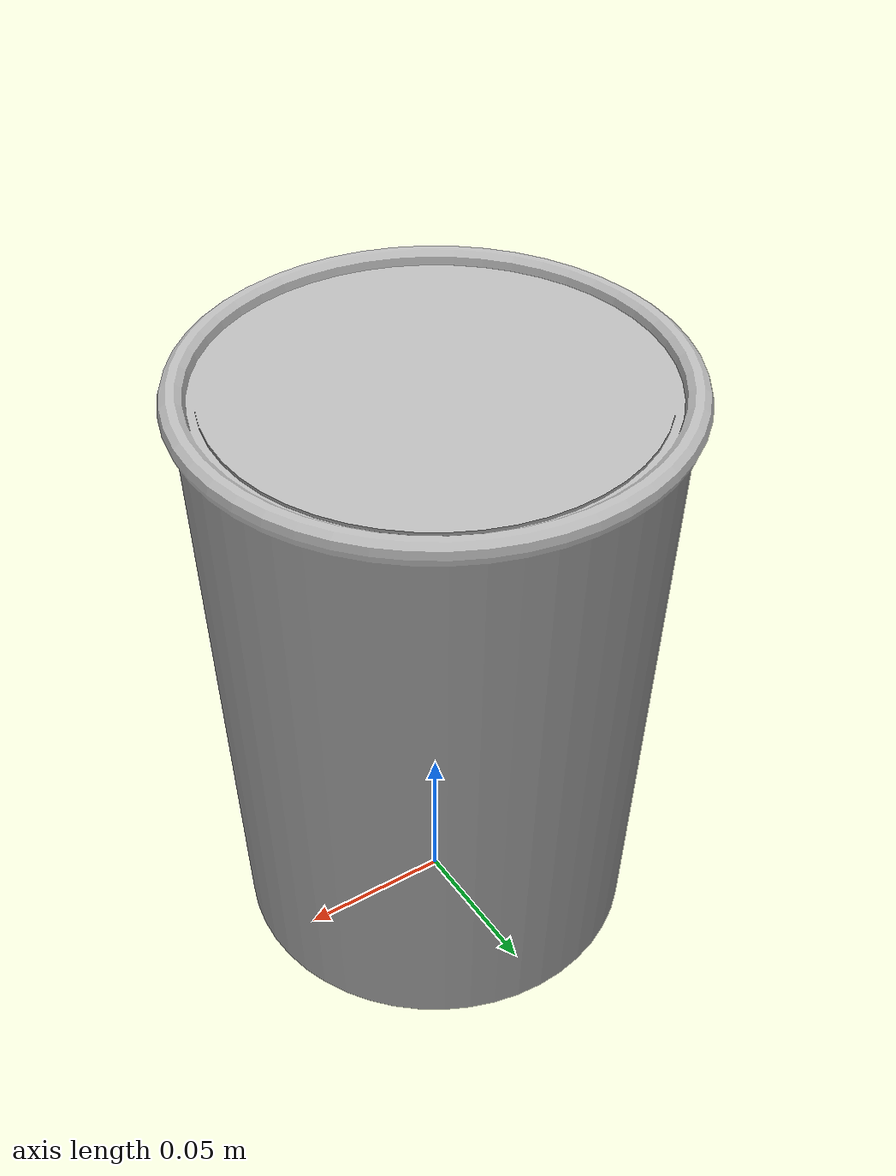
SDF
<?xml version="1.0"?>
<sdf version="1.10">
  <model name="waste_bucket">
    <static>false</static>
    <link name="base_link">
      <inertial>
        <pose>0.000000 0.000000 0.101900 0 0 0</pose>
        <mass>0.4500</mass>
        <inertia>
          <ixx>0.00225079</ixx><ixy>0</ixy><ixz>0</ixz>
          <iyy>0.00225079</iyy><iyz>0</iyz>
          <izz>0.00138651</izz>
        </inertia>
      </inertial>
      <collision name="collision">
        <pose>0.000000 0.000000 0.101900 0 0 0</pose>
        <geometry>
          <cylinder><radius>0.078500</radius><length>0.203800</length></cylinder>
        </geometry>
        <surface>
          <friction><ode><mu>0.9</mu><mu2>0.9</mu2></ode></friction>
        </surface>
      </collision>
      <visual name="visual">
        <geometry>
          <mesh><uri>model://waste_bucket/meshes/waste_bucket.obj</uri></mesh>
        </geometry>
      </visual>
    </link>
  </model>
</sdf>
